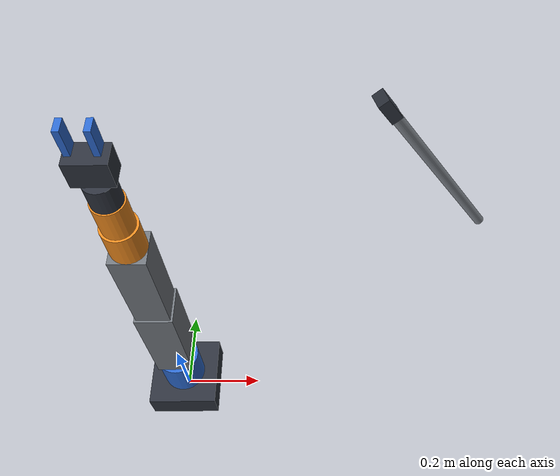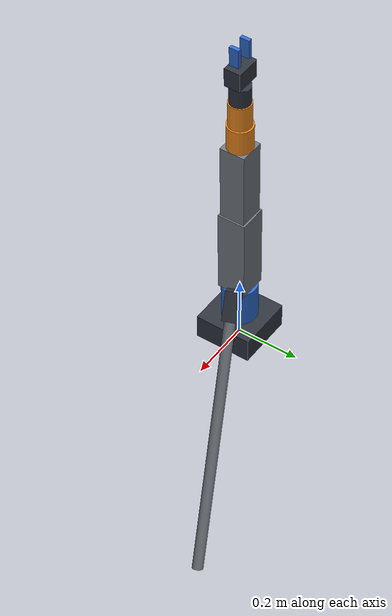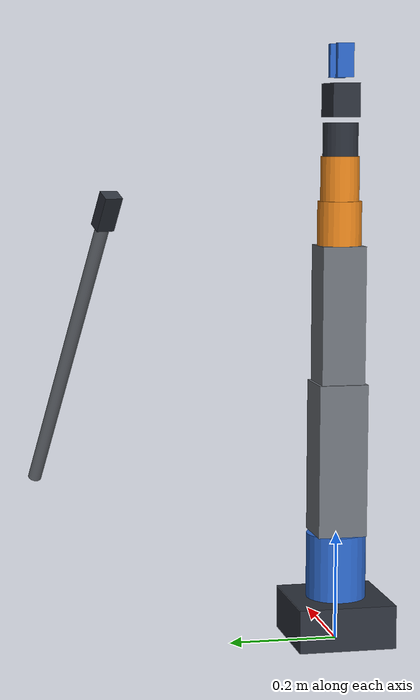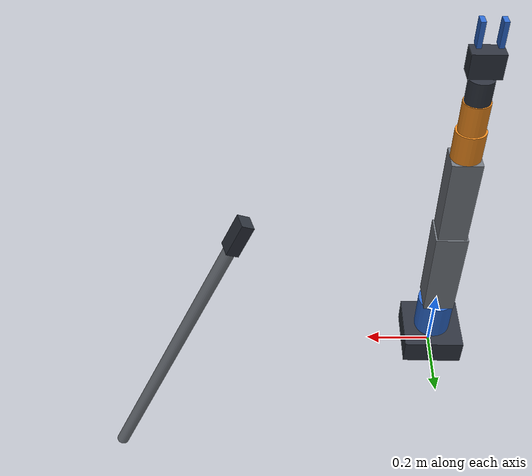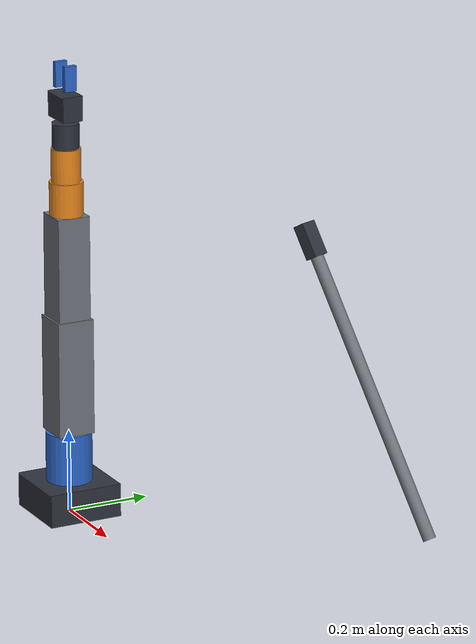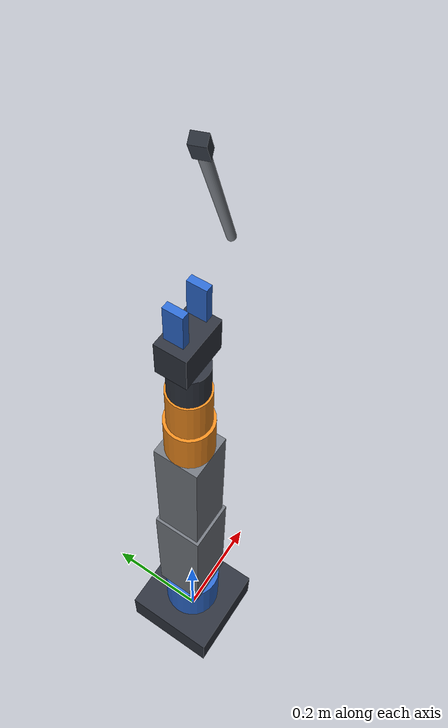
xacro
<?xml version="1.0"?>
<robot xmlns:xacro="http://www.ros.org/wiki/xacro" name="isc_arm">

  <!-- ===================== Properties ===================== -->
  <xacro:property name="PI" value="3.1415926535897931"/>
  <xacro:property name="deg" value="${PI/180.0}"/>

  <!-- Link lengths (approx xArm6-scale, reach ~0.7m) -->
  <xacro:property name="base_height" value="0.08"/>
  <xacro:property name="link1_height" value="0.12"/>
  <xacro:property name="link2_length" value="0.28"/>
  <xacro:property name="link3_length" value="0.25"/>
  <xacro:property name="link4_length" value="0.08"/>
  <xacro:property name="link5_length" value="0.08"/>
  <xacro:property name="link6_length" value="0.06"/>
  <xacro:property name="gripper_length" value="0.12"/>

  <!-- Inertial macro -->
  <xacro:macro name="box_inertial" params="mass x y z">
    <inertial>
      <mass value="${mass}"/>
      <inertia ixx="${mass*(y*y+z*z)/12.0}" ixy="0" ixz="0"
               iyy="${mass*(x*x+z*z)/12.0}" iyz="0"
               izz="${mass*(x*x+y*y)/12.0}"/>
    </inertial>
  </xacro:macro>

  <xacro:macro name="cylinder_inertial" params="mass radius length">
    <inertial>
      <mass value="${mass}"/>
      <inertia ixx="${mass*(3*radius*radius+length*length)/12.0}" ixy="0" ixz="0"
               iyy="${mass*(3*radius*radius+length*length)/12.0}" iyz="0"
               izz="${mass*radius*radius/2.0}"/>
    </inertial>
  </xacro:macro>

  <!-- ===================== Materials ===================== -->
  <material name="isc_grey">
    <color rgba="0.45 0.47 0.50 1.0"/>
  </material>
  <material name="isc_dark">
    <color rgba="0.18 0.20 0.24 1.0"/>
  </material>
  <material name="isc_blue">
    <color rgba="0.18 0.42 0.82 1.0"/>
  </material>
  <material name="isc_orange">
    <color rgba="0.95 0.55 0.12 1.0"/>
  </material>

  <!-- ===================== Base ===================== -->
  <link name="base_link">
    <visual>
      <origin xyz="0 0 ${base_height/2}"/>
      <geometry><box size="0.18 0.18 ${base_height}"/></geometry>
      <material name="isc_dark"/>
    </visual>
    <collision>
      <origin xyz="0 0 ${base_height/2}"/>
      <geometry><box size="0.18 0.18 ${base_height}"/></geometry>
    </collision>
    <xacro:box_inertial mass="4.0" x="0.18" y="0.18" z="${base_height}"/>
  </link>

  <!-- ===================== Link 1 (waist yaw) ===================== -->
  <joint name="joint1" type="revolute">
    <parent link="base_link"/>
    <child link="link1"/>
    <origin xyz="0 0 ${base_height}" rpy="0 0 0"/>
    <axis xyz="0 0 1"/>
    <limit lower="${-180*deg}" upper="${180*deg}" effort="50" velocity="2.5"/>
    <dynamics damping="0.5" friction="0.1"/>
  </joint>

  <link name="link1">
    <visual>
      <origin xyz="0 0 ${link1_height/2}"/>
      <geometry><cylinder radius="0.055" length="${link1_height}"/></geometry>
      <material name="isc_blue"/>
    </visual>
    <collision>
      <origin xyz="0 0 ${link1_height/2}"/>
      <geometry><cylinder radius="0.055" length="${link1_height}"/></geometry>
    </collision>
    <xacro:cylinder_inertial mass="1.5" radius="0.055" length="${link1_height}"/>
  </link>

  <!-- ===================== Link 2 (shoulder pitch) ===================== -->
  <joint name="joint2" type="revolute">
    <parent link="link1"/>
    <child link="link2"/>
    <origin xyz="0 0 ${link1_height}" rpy="0 0 0"/>
    <axis xyz="0 1 0"/>
    <limit lower="${-100*deg}" upper="${100*deg}" effort="50" velocity="2.5"/>
    <dynamics damping="0.5" friction="0.1"/>
  </joint>

  <link name="link2">
    <visual>
      <origin xyz="0 0 ${link2_length/2}" rpy="0 0 0"/>
      <geometry><box size="0.09 0.09 ${link2_length}"/></geometry>
      <material name="isc_grey"/>
    </visual>
    <collision>
      <origin xyz="0 0 ${link2_length/2}"/>
      <geometry><box size="0.09 0.09 ${link2_length}"/></geometry>
    </collision>
    <xacro:box_inertial mass="1.2" x="0.09" y="0.09" z="${link2_length}"/>
  </link>

  <!-- ===================== Link 3 (elbow pitch) ===================== -->
  <joint name="joint3" type="revolute">
    <parent link="link2"/>
    <child link="link3"/>
    <origin xyz="0 0 ${link2_length}" rpy="0 0 0"/>
    <axis xyz="0 1 0"/>
    <limit lower="${-120*deg}" upper="${120*deg}" effort="40" velocity="2.5"/>
    <dynamics damping="0.4" friction="0.08"/>
  </joint>

  <link name="link3">
    <visual>
      <origin xyz="0 0 ${link3_length/2}"/>
      <geometry><box size="0.08 0.08 ${link3_length}"/></geometry>
      <material name="isc_grey"/>
    </visual>
    <collision>
      <origin xyz="0 0 ${link3_length/2}"/>
      <geometry><box size="0.08 0.08 ${link3_length}"/></geometry>
    </collision>
    <xacro:box_inertial mass="1.0" x="0.08" y="0.08" z="${link3_length}"/>
  </link>

  <!-- ===================== Link 4 (wrist 1 yaw) ===================== -->
  <joint name="joint4" type="revolute">
    <parent link="link3"/>
    <child link="link4"/>
    <origin xyz="0 0 ${link3_length}" rpy="0 0 0"/>
    <axis xyz="0 0 1"/>
    <limit lower="${-180*deg}" upper="${180*deg}" effort="20" velocity="3.0"/>
    <dynamics damping="0.2" friction="0.05"/>
  </joint>

  <link name="link4">
    <visual>
      <origin xyz="0 0 ${link4_length/2}"/>
      <geometry><cylinder radius="0.04" length="${link4_length}"/></geometry>
      <material name="isc_orange"/>
    </visual>
    <collision>
      <origin xyz="0 0 ${link4_length/2}"/>
      <geometry><cylinder radius="0.04" length="${link4_length}"/></geometry>
    </collision>
    <xacro:cylinder_inertial mass="0.5" radius="0.04" length="${link4_length}"/>
  </link>

  <!-- ===================== Link 5 (wrist 2 pitch) ===================== -->
  <joint name="joint5" type="revolute">
    <parent link="link4"/>
    <child link="link5"/>
    <origin xyz="0 0 ${link4_length}" rpy="0 0 0"/>
    <axis xyz="0 1 0"/>
    <limit lower="${-120*deg}" upper="${120*deg}" effort="20" velocity="3.0"/>
    <dynamics damping="0.2" friction="0.05"/>
  </joint>

  <link name="link5">
    <visual>
      <origin xyz="0 0 ${link5_length/2}"/>
      <geometry><cylinder radius="0.035" length="${link5_length}"/></geometry>
      <material name="isc_orange"/>
    </visual>
    <collision>
      <origin xyz="0 0 ${link5_length/2}"/>
      <geometry><cylinder radius="0.035" length="${link5_length}"/></geometry>
    </collision>
    <xacro:cylinder_inertial mass="0.4" radius="0.035" length="${link5_length}"/>
  </link>

  <!-- ===================== Link 6 (flange) ===================== -->
  <joint name="joint6" type="revolute">
    <parent link="link5"/>
    <child link="link6"/>
    <origin xyz="0 0 ${link5_length}" rpy="0 0 0"/>
    <axis xyz="0 0 1"/>
    <limit lower="${-360*deg}" upper="${360*deg}" effort="15" velocity="3.0"/>
    <dynamics damping="0.15" friction="0.04"/>
  </joint>

  <link name="link6">
    <visual>
      <origin xyz="0 0 ${link6_length/2}"/>
      <geometry><cylinder radius="0.032" length="${link6_length}"/></geometry>
      <material name="isc_dark"/>
    </visual>
    <collision>
      <origin xyz="0 0 ${link6_length/2}"/>
      <geometry><cylinder radius="0.032" length="${link6_length}"/></geometry>
    </collision>
    <xacro:cylinder_inertial mass="0.3" radius="0.032" length="${link6_length}"/>
  </link>

  <!-- tool0 flange frame -->
  <joint name="tool0_joint" type="fixed">
    <parent link="link6"/>
    <child link="tool0"/>
    <origin xyz="0 0 ${link6_length}" rpy="0 0 0"/>
  </joint>
  <link name="tool0"/>

  <!-- ===================== Gripper ===================== -->
  <joint name="gripper_base_joint" type="fixed">
    <parent link="tool0"/>
    <child link="gripper_link"/>
    <origin xyz="0 0 0.01" rpy="0 0 0"/>
  </joint>

  <link name="gripper_link">
    <visual>
      <origin xyz="0 0 0.03"/>
      <geometry><box size="0.08 0.05 0.06"/></geometry>
      <material name="isc_dark"/>
    </visual>
    <collision>
      <origin xyz="0 0 0.03"/>
      <geometry><box size="0.08 0.05 0.06"/></geometry>
    </collision>
    <xacro:box_inertial mass="0.25" x="0.08" y="0.05" z="0.06"/>
  </link>

  <!-- Left finger -->
  <joint name="gripper_left_joint" type="prismatic">
    <parent link="gripper_link"/>
    <child link="gripper_left_link"/>
    <origin xyz="0.025 0 0.08" rpy="0 0 0"/>
    <axis xyz="1 0 0"/>
    <limit lower="0.0" upper="0.04" effort="20" velocity="0.1"/>
    <dynamics damping="0.5" friction="0.2"/>
  </joint>
  <link name="gripper_left_link">
    <visual>
      <origin xyz="0 0 0.02"/>
      <geometry><box size="0.012 0.03 0.06"/></geometry>
      <material name="isc_blue"/>
    </visual>
    <collision>
      <origin xyz="0 0 0.02"/>
      <geometry><box size="0.012 0.03 0.06"/></geometry>
    </collision>
    <xacro:box_inertial mass="0.03" x="0.012" y="0.03" z="0.06"/>
  </link>

  <!-- Right finger -->
  <joint name="gripper_right_joint" type="prismatic">
    <parent link="gripper_link"/>
    <child link="gripper_right_link"/>
    <origin xyz="-0.025 0 0.08" rpy="0 0 0"/>
    <axis xyz="-1 0 0"/>
    <limit lower="0.0" upper="0.04" effort="20" velocity="0.1"/>
    <dynamics damping="0.5" friction="0.2"/>
  </joint>
  <link name="gripper_right_link">
    <visual>
      <origin xyz="0 0 0.02"/>
      <geometry><box size="0.012 0.03 0.06"/></geometry>
      <material name="isc_blue"/>
    </visual>
    <collision>
      <origin xyz="0 0 0.02"/>
      <geometry><box size="0.012 0.03 0.06"/></geometry>
    </collision>
    <xacro:box_inertial mass="0.03" x="0.012" y="0.03" z="0.06"/>
  </link>

  <!-- TCP -->
  <joint name="tcp_joint" type="fixed">
    <parent link="gripper_link"/>
    <child link="tcp_link"/>
    <origin xyz="0 0 0.12" rpy="0 0 0"/>
  </joint>
  <link name="tcp_link"/>

  <!-- ===================== Camera (eye-to-hand on stand) ===================== -->
  <joint name="camera_stand_joint" type="fixed">
    <parent link="world"/>
    <child link="camera_stand_link"/>
    <origin xyz="0.55 0.35 0.75" rpy="0 ${30*deg} ${200*deg}"/>
  </joint>

  <link name="camera_stand_link">
    <visual>
      <origin xyz="0 0 -0.35"/>
      <geometry><cylinder radius="0.015" length="0.7"/></geometry>
      <material name="isc_grey"/>
    </visual>
    <collision>
      <origin xyz="0 0 -0.35"/>
      <geometry><cylinder radius="0.015" length="0.7"/></geometry>
    </collision>
    <xacro:cylinder_inertial mass="0.5" radius="0.015" length="0.7"/>
  </link>

  <joint name="camera_joint" type="fixed">
    <parent link="camera_stand_link"/>
    <child link="camera_link"/>
    <origin xyz="0 0 0.02" rpy="${-PI/2} 0 ${-PI/2}"/>
  </joint>

  <link name="camera_link">
    <visual>
      <geometry><box size="0.04 0.08 0.03"/></geometry>
      <material name="isc_dark"/>
    </visual>
    <collision>
      <geometry><box size="0.04 0.08 0.03"/></geometry>
    </collision>
    <xacro:box_inertial mass="0.1" x="0.04" y="0.08" z="0.03"/>
  </link>

  <joint name="camera_optical_joint" type="fixed">
    <parent link="camera_link"/>
    <child link="camera_color_optical_frame"/>
    <origin xyz="0 0 0" rpy="${-PI/2} 0 ${-PI/2}"/>
  </joint>
  <link name="camera_color_optical_frame"/>

  <!-- world fixed root for Gazebo -->
  <link name="world"/>
  <joint name="world_joint" type="fixed">
    <parent link="world"/>
    <child link="base_link"/>
    <origin xyz="0 0 0" rpy="0 0 0"/>
  </joint>

  <!-- ===================== ros2_control ===================== -->
  <xacro:arg name="use_sim" default="true"/>
  <xacro:arg name="use_fake_hardware" default="false"/>

  <ros2_control name="isc_arm_system" type="system">
    <hardware>
      <xacro:if value="$(arg use_sim)">
        <plugin>gazebo_ros2_control/GazeboSystem</plugin>
      </xacro:if>
      <xacro:unless value="$(arg use_sim)">
        <xacro:if value="$(arg use_fake_hardware)">
          <plugin>mock_components/GenericSystem</plugin>
        </xacro:if>
        <xacro:unless value="$(arg use_fake_hardware)">
          <plugin>xarm_control/XArmHW</plugin>
        </xacro:unless>
      </xacro:unless>
    </hardware>

    <joint name="joint1">
      <command_interface name="position"/>
      <state_interface name="position"/>
      <state_interface name="velocity"/>
      <state_interface name="effort"/>
    </joint>
    <joint name="joint2">
      <command_interface name="position"/>
      <state_interface name="position"/>
      <state_interface name="velocity"/>
      <state_interface name="effort"/>
    </joint>
    <joint name="joint3">
      <command_interface name="position"/>
      <state_interface name="position"/>
      <state_interface name="velocity"/>
      <state_interface name="effort"/>
    </joint>
    <joint name="joint4">
      <command_interface name="position"/>
      <state_interface name="position"/>
      <state_interface name="velocity"/>
      <state_interface name="effort"/>
    </joint>
    <joint name="joint5">
      <command_interface name="position"/>
      <state_interface name="position"/>
      <state_interface name="velocity"/>
      <state_interface name="effort"/>
    </joint>
    <joint name="joint6">
      <command_interface name="position"/>
      <state_interface name="position"/>
      <state_interface name="velocity"/>
      <state_interface name="effort"/>
    </joint>
    <joint name="gripper_left_joint">
      <command_interface name="position"/>
      <state_interface name="position"/>
      <state_interface name="velocity"/>
    </joint>
    <joint name="gripper_right_joint">
      <command_interface name="position"/>
      <state_interface name="position"/>
      <state_interface name="velocity"/>
    </joint>
  </ros2_control>

</robot>
